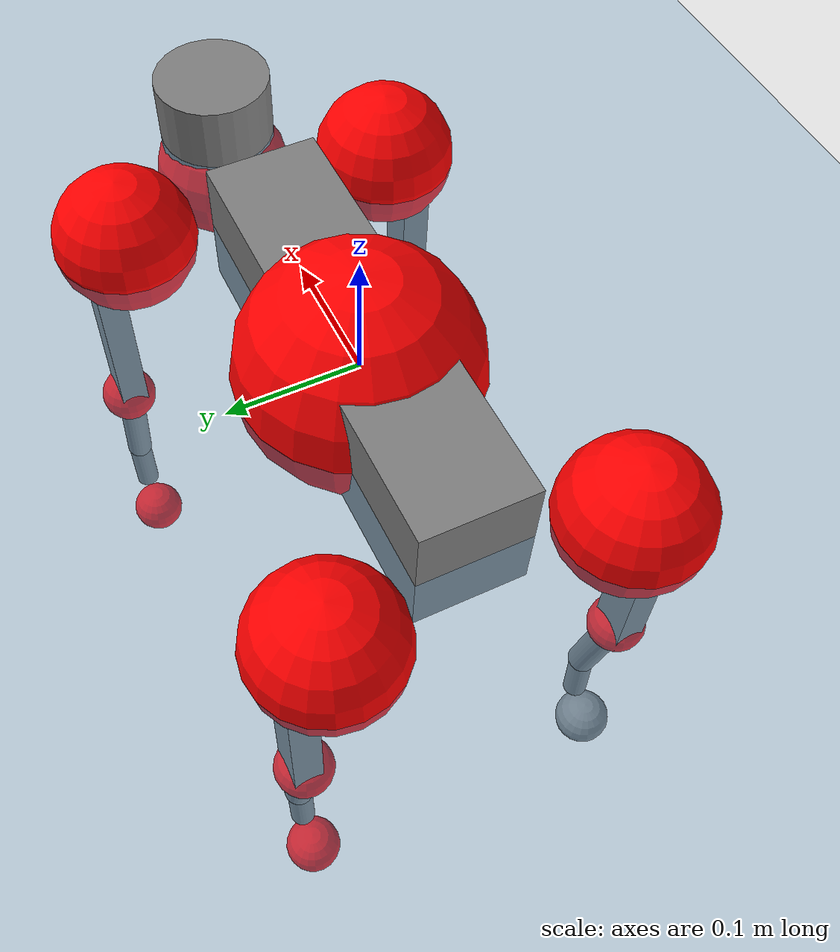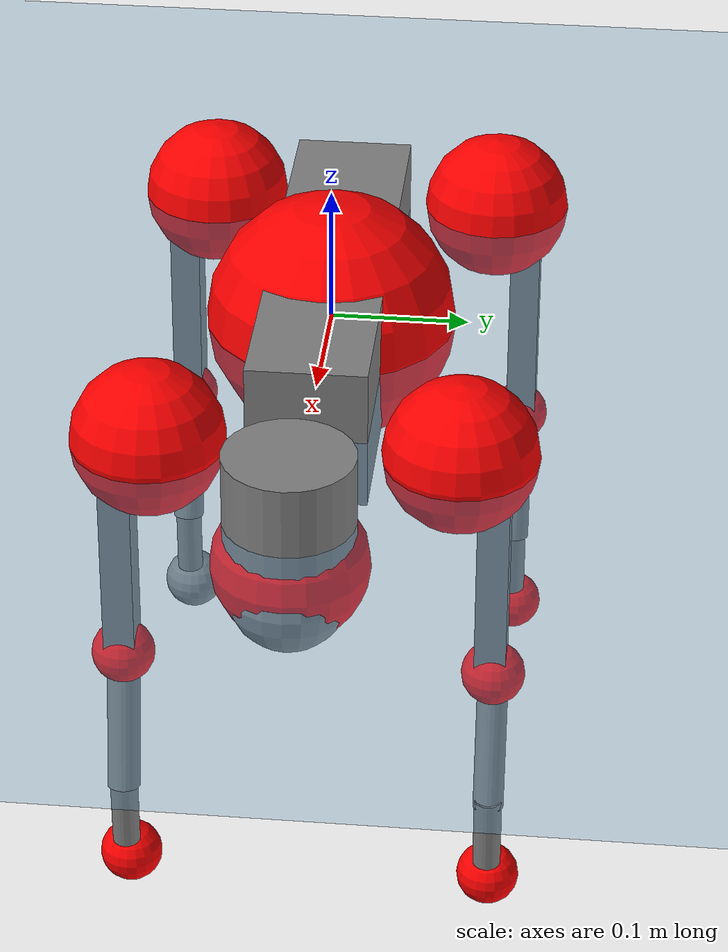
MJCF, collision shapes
<mujoco model="go2">
  <compiler angle="radian" assetdir="assets" balanceinertia="true" inertiafromgeom="false"/>

  <option timestep="0.005" density="1.2" viscosity="2e-05"/>

  <size nkey="1"/>

  <visual>
    <quality shadowsize="8192"/>
    <map shadowclip="0.5"/>
  </visual>

  <default>
    <default class="/">
      <geom contype="0" conaffinity="0" group="1" solref="-1000 -80"/>
      <site size="0.01 0.005 0.005" group="5"/>
      <general forcelimited="true" biastype="affine" gainprm="20" biasprm="0 -20 -0.5"/>
      <default class="go2">
        <joint armature="0.01" damping="0.01" frictionloss="0.2"/>
        <geom condim="1" margin="0.001"/>
        <default class="visual">
          <geom type="mesh" group="2"/>
        </default>
        <default class="collision">
          <geom group="3"/>
          <default class="foot">
            <geom size="0.022 0 0" condim="6" priority="1" friction="0.8 0.02 0.01" solimp="0.015 1 0.022"/>
          </default>
        </default>
        <default class="reward_collision_sphere">
          <geom group="5" rgba="1 0 0 1"/>
        </default>
      </default>
    </default>
  </default>

  <asset>
    <texture type="skybox" colorspace="auto" name="//unnamed_texture_0" builtin="gradient" rgb1="0.95 0.95 0.95" rgb2="0.95 0.95 0.95" width="100" height="600"/>
    <texture type="2d" colorspace="auto" name="texplane" builtin="checker" rgb1="0.345 0.575 0.748" rgb2="0.345 0.575 0.748" markrgb="1 1 1" width="512" height="512"/>
    <material name="MatPlane" class="/" texture="texplane" texuniform="true" texrepeat="2 2" specular="0.9"/>
    <material name="metal" class="/" rgba="0.9 0.95 0.95 1"/>
    <material name="black" class="/" rgba="0 0 0 1"/>
    <material name="white" class="/"/>
    <material name="gray" class="/" rgba="0.671705 0.692426 0.77427 1"/>
    <mesh name="base_0" class="/" file="base_0.obj"/>
    <mesh name="base_1" class="/" file="base_1.obj"/>
    <mesh name="base_2" class="/" file="base_2.obj"/>
    <mesh name="base_3" class="/" file="base_3.obj"/>
    <mesh name="base_4" class="/" file="base_4.obj"/>
    <mesh name="hip_0" class="/" file="hip_0.obj"/>
    <mesh name="hip_1" class="/" file="hip_1.obj"/>
    <mesh name="thigh_0" class="/" file="thigh_0.obj"/>
    <mesh name="thigh_1" class="/" file="thigh_1.obj"/>
    <mesh name="thigh_mirror_0" class="/" file="thigh_mirror_0.obj"/>
    <mesh name="thigh_mirror_1" class="/" file="thigh_mirror_1.obj"/>
    <mesh name="calf_0" class="/" file="calf_0.obj"/>
    <mesh name="calf_1" class="/" file="calf_1.obj"/>
    <mesh name="calf_mirror_0" class="/" file="calf_mirror_0.obj"/>
    <mesh name="calf_mirror_1" class="/" file="calf_mirror_1.obj"/>
    <mesh name="foot" class="/" file="foot.obj"/>
  </asset>

  <worldbody>
    <geom name="floor" class="/" size="100 100 0.125" type="plane" group="0" material="MatPlane"/>
    <light name="toplight_shadow" class="/" pos="0 0 5" dir="0.0990148 0.0990148 -0.990148" type="directional" ambient="0.04 0.04 0.04" diffuse="0.55 0.55 0.55" specular="0.12 0.12 0.12"/>
    <light name="toplight_fill" class="/" pos="0 0 5" dir="0.0990148 0.0990148 -0.990148" type="directional" castshadow="false" ambient="0.04 0.04 0.04" diffuse="0.3 0.3 0.3" specular="0.08 0.08 0.08"/>
    <body name="trunk" childclass="go2" pos="-0.000577416 0.000278572 0.000642705" quat="1 2.51656e-05 1.78178e-05 -7.48328e-06">
      <inertial pos="0.0205251 -0.000483773 -0.0041693" quat="0.0033501 0.711515 -0.00569854 0.70264" mass="5.17314" diaginertia="0.0850058 0.0665118 0.0115549"/>
      <joint name="//unnamed_joint_0" type="free" armature="0" damping="0" frictionloss="0"/>
      <geom name="//unnamed_geom_1" class="visual" material="black" mesh="base_0"/>
      <geom name="//unnamed_geom_2" class="visual" material="black" mesh="base_1"/>
      <geom name="//unnamed_geom_3" class="visual" material="black" mesh="base_2"/>
      <geom name="//unnamed_geom_4" class="visual" material="white" mesh="base_3"/>
      <geom name="//unnamed_geom_5" class="visual" material="gray" mesh="base_4"/>
      <geom name="trunk_1" class="collision" size="0.171332 0.0425825 0.0519188" type="box"/>
      <geom name="trunk_2" class="collision" size="0.0455428 0.0409885" pos="0.270976 0 0.00856806" type="cylinder"/>
      <geom name="trunk_3" class="collision" size="0.0428102" pos="0.278582 0 -0.0514083"/>
      <geom name="//unnamed_geom_9" class="reward_collision_sphere" size="0.0910856"/>
      <geom name="//unnamed_geom_10" class="reward_collision_sphere" size="0.0546514" pos="0.266222 0 -0.0385563"/>
      <site name="imu" pos="-0.026283 -0.0119692 0.0413889" size="0.00910856"/>
      <camera name="track" pos="0 -1.84994 0" quat="0.707107 0.707107 0 0" mode="trackcom"/>
      <camera name="ego_camera" pos="0.296647 0 0.0385563" quat="-0.5 -0.5 0.5 0.5"/>
      <body name="FL_hip" pos="0.183543 0.0431076 0.00209587" quat="0.999999 0.000455705 -0.000796823 0.000803562">
        <inertial pos="-0.0044462 0.00253732 0.000579206" quat="0.499653 0.498417 0.505687 0.496193" mass="0.525557" diaginertia="0.000703764 0.000414561 0.000225533"/>
        <joint name="FL_hip_joint" pos="0 0 0" axis="0.99998 -0.00310924 0.00552009" range="-1.00964 1.04551" armature="0.00951283" damping="0.00546282" frictionloss="0.180455"/>
        <geom name="//unnamed_geom_11" class="visual" material="metal" mesh="hip_0"/>
        <geom name="//unnamed_geom_12" class="visual" material="gray" mesh="hip_1"/>
        <geom name="//unnamed_geom_13" class="collision" size="0.0418994 0.0182171" pos="0 0.0739977 0" quat="0.707107 0.707107 0 0" type="cylinder"/>
        <geom name="//unnamed_geom_14" class="reward_collision_sphere" size="0.0546514" pos="0 0.064748 0"/>
        <body name="FL_thigh" pos="-0.000190505 0.0888483 0.00208048" quat="1 -0.000108297 -8.16763e-05 0.000114822">
          <inertial pos="-0.00343633 -0.0224505 -0.0303221" quat="0.827299 0.0837739 -0.0191364 0.55515" mass="0.873809" diaginertia="0.00463876 0.00398992 0.00040618"/>
          <joint name="FL_thigh_joint" pos="0 0 0" axis="-0.00176619 0.999998 0.00134105" range="-1.56552 3.53826" armature="0.00934664" damping="0" frictionloss="0.181753"/>
          <geom name="//unnamed_geom_15" class="visual" material="metal" mesh="thigh_0"/>
          <geom name="//unnamed_geom_16" class="visual" material="gray" mesh="thigh_1"/>
          <geom name="//unnamed_geom_17" class="collision" size="0.0970062 0.011158 0.0154846" pos="0 0 -0.0912498" quat="0.707107 0 0.707107 0" type="box"/>
          <body name="FL_calf" pos="0.00184943 0.00199182 -0.182048" quat="1 -4.35348e-05 1.33378e-05 2.12535e-05">
            <inertial pos="0.00706428 0.00014899 -0.120271" quat="0.710709 0.00200102 -0.00381184 0.703473" mass="0.186094" diaginertia="0.00115946 0.000993474 2.4483e-05"/>
            <joint name="FL_calf_joint" pos="0 0 0" axis="-0.00119481 0.999998 0.00163096" range="-2.72019 -0.868993" armature="0.00903941" damping="0.00239034" frictionloss="0.178291"/>
            <geom name="//unnamed_geom_18" class="visual" material="gray" mesh="calf_0"/>
            <geom name="//unnamed_geom_19" class="visual" material="black" mesh="calf_1"/>
            <geom name="FL_calf0" class="collision" size="0.0109303 0.0546514" pos="0.00760633 0 -0.0514083" quat="0.994493 0 -0.104807 0" type="cylinder"/>
            <geom name="//unnamed_geom_21" class="collision" size="0.0100194 0.0296028" pos="0.0190158 0 -0.126807" quat="0.999688 0 0.0249974 0" type="cylinder"/>
            <geom name="//unnamed_geom_22" class="visual" pos="0 0 -0.1825" quat="1 0 0 0" material="black" mesh="foot"/>
            <geom name="FL_foot" class="foot" size="0.0168374" pos="-0.00190158 0 -0.1825"/>
            <geom name="//unnamed_geom_24" class="reward_collision_sphere" size="0.0227714"/>
            <geom name="//unnamed_geom_25" class="reward_collision_sphere" size="0.0227714" pos="-0.00190158 0 -0.1825"/>
            <site name="FL_foot" class="foot" pos="-0.00190158 0 -0.1825" size="0.00910856"/>
          </body>
        </body>
      </body>
      <body name="FR_hip" pos="0.184008 -0.0428141 0.00255463" quat="1 -7.87816e-06 -0.000108753 -0.000130245">
        <inertial pos="-0.00420931 -0.00201328 -9.86837e-05" quat="0.495086 0.507621 0.49324 0.50391" mass="0.524482" diaginertia="0.000710008 0.000409205 0.000227185"/>
        <joint name="FR_hip_joint" pos="0 0 0" axis="0.999999 0.000811771 0.000817487" stiffness="0.00397552" range="-1.03356 1.05788" armature="0.00913403" damping="0.0109626" frictionloss="0.173073"/>
        <geom name="//unnamed_geom_26" class="visual" pos="0 5.9383e-10 2.54706e-08" quat="4.63268e-05 1 0 0" material="metal" mesh="hip_0"/>
        <geom name="//unnamed_geom_27" class="visual" pos="0 9.6267e-10 -6.29985e-08" quat="4.63268e-05 1 0 0" material="gray" mesh="hip_1"/>
        <geom name="//unnamed_geom_28" class="collision" size="0.0418994 0.0182171" pos="0 -0.0739977 0" quat="0.707107 0.707107 0 0" type="cylinder"/>
        <geom name="//unnamed_geom_29" class="reward_collision_sphere" size="0.0546514" pos="0 -0.064748 0"/>
        <body name="FR_thigh" pos="-0.000200502 -0.08838 -0.000360975" quat="1 0.000215743 -0.000243748 0.000380189">
          <inertial pos="-0.00357889 0.0208426 -0.0300545" quat="0.544495 -0.0270918 0.0800331 0.834497" mass="0.882592" diaginertia="0.00477556 0.00405654 0.000416051"/>
          <joint name="FR_thigh_joint" pos="0 0 0" axis="-0.00176172 -0.999994 0.00306476" range="-3.53277 1.59158" armature="0.00862475" damping="0.0140528" frictionloss="0.177685"/>
          <geom name="//unnamed_geom_30" class="visual" material="metal" mesh="thigh_mirror_0"/>
          <geom name="//unnamed_geom_31" class="visual" material="gray" mesh="thigh_mirror_1"/>
          <geom name="//unnamed_geom_32" class="collision" size="0.0970062 0.011158 0.0154846" pos="0 0 -0.0912498" quat="0.707107 0 0.707107 0" type="box"/>
          <body name="FR_calf" pos="-0.000263173 0.000631912 -0.181771" quat="1 -7.35779e-06 6.50842e-06 9.03602e-06">
            <inertial pos="0.00565236 0.000278512 -0.118937" quat="0.703637 -0.00680969 0.0016737 0.710525" mass="0.174659" diaginertia="0.00110896 0.000989212 2.32371e-05"/>
            <joint name="FR_calf_joint" pos="0 0 0" axis="0.00733882 -0.999972 -0.00173737" range="0.830159 2.73511" armature="0.00944834" damping="0.0110778" frictionloss="0.182772"/>
            <geom name="//unnamed_geom_33" class="visual" material="gray" mesh="calf_mirror_0"/>
            <geom name="//unnamed_geom_34" class="visual" material="black" mesh="calf_mirror_1"/>
            <geom name="FR_calf0" class="collision" size="0.0118411 0.0546514" pos="0.00950792 0 -0.0514083" quat="0.995004 0 -0.0998334 0" type="cylinder"/>
            <geom name="//unnamed_geom_36" class="collision" size="0.0100194 0.0296028" pos="0.0190158 0 -0.126807" quat="0.999688 0 0.0249974 0" type="cylinder"/>
            <geom name="//unnamed_geom_37" class="visual" pos="0 0 -0.1825" quat="1 0 0 0" material="black" mesh="foot"/>
            <geom name="FR_foot" class="foot" size="0.0220204" pos="-0.00190158 0 -0.1825"/>
            <geom name="//unnamed_geom_39" class="reward_collision_sphere" size="0.0227714"/>
            <geom name="//unnamed_geom_40" class="reward_collision_sphere" size="0.0227714" pos="-0.00190158 0 -0.1825"/>
            <site name="FR_foot" class="foot" pos="-0.00190158 0 -0.1825" size="0.00910856"/>
          </body>
        </body>
      </body>
      <body name="RL_hip" pos="-0.183403 0.0435501 -0.00182575" quat="1 -2.24344e-05 1.57511e-05 4.4361e-06">
        <inertial pos="0.00491224 0.00176322 -0.00203121" quat="0.503961 0.498873 0.49775 0.499394" mass="0.521566" diaginertia="0.000696608 0.000399785 0.000221832"/>
        <joint name="RL_hip_joint" pos="0 0 0" axis="-0.999838 -0.0148162 0.0102354" range="-1.00124 1.08255" armature="0.00908257" damping="0.000682322" frictionloss="0.198914"/>
        <geom name="//unnamed_geom_41" class="visual" pos="-8.18768e-10 0 -1.60497e-07" quat="4.63268e-05 0 1 0" material="metal" mesh="hip_0"/>
        <geom name="//unnamed_geom_42" class="visual" pos="-1.32732e-09 0 -1.42338e-07" quat="4.63268e-05 0 1 0" material="gray" mesh="hip_1"/>
        <geom name="//unnamed_geom_43" class="collision" size="0.0418994 0.0182171" pos="0 0.0739977 0" quat="0.707107 0.707107 0 0" type="cylinder"/>
        <geom name="//unnamed_geom_44" class="reward_collision_sphere" size="0.0546514" pos="0 0.064748 0"/>
        <body name="RL_thigh" pos="0.000441159 0.0886162 -0.00158116" quat="1 1.20612e-05 3.93192e-05 2.27333e-05">
          <inertial pos="-0.00518468 -0.0198958 -0.0304744" quat="0.824666 0.0839555 -0.019024 0.55903" mass="0.86107" diaginertia="0.00444867 0.003901 0.000391348"/>
          <joint name="RL_thigh_joint" pos="0 0 0" axis="0.00174574 0.999957 0.00905591" stiffness="0.00344651" range="-0.559795 4.54905" armature="0.00866487" damping="0.00790137" frictionloss="0.185193"/>
          <geom name="//unnamed_geom_45" class="visual" material="metal" mesh="thigh_0"/>
          <geom name="//unnamed_geom_46" class="visual" material="gray" mesh="thigh_1"/>
          <geom name="//unnamed_geom_47" class="collision" size="0.0970062 0.011158 0.0154846" pos="0 0 -0.0912498" quat="0.707107 0 0.707107 0" type="box"/>
          <body name="RL_calf" pos="0.000300924 -0.00219774 -0.183737" quat="1 9.96723e-06 -3.19484e-05 -1.16805e-05">
            <inertial pos="0.00555847 -0.000300539 -0.120879" quat="0.712017 0.00540594 -0.000529241 0.702141" mass="0.180839" diaginertia="0.00115644 0.000980148 2.48883e-05"/>
            <joint name="RL_calf_joint" pos="0 0 0" axis="0.00514411 0.999946 -0.0089967" range="-2.74158 -0.83634" armature="0.00939707" damping="0.000209906" frictionloss="0.18027"/>
            <geom name="//unnamed_geom_48" class="visual" material="gray" mesh="calf_0"/>
            <geom name="//unnamed_geom_49" class="visual" material="black" mesh="calf_1"/>
            <geom name="RL_calf0" class="collision" size="0.0118411 0.0546514" pos="0.00950792 0 -0.0514083" quat="0.995004 0 -0.0998334 0" type="cylinder"/>
            <geom name="//unnamed_geom_51" class="collision" size="0.0100194 0.0296028" pos="0.0190158 0 -0.126807" quat="0.999688 0 0.0249974 0" type="cylinder"/>
            <geom name="//unnamed_geom_52" class="visual" pos="0 0 -0.1825" quat="1 0 0 0" material="black" mesh="foot"/>
            <geom name="RL_foot" class="foot" size="0.0180831" pos="-0.00190158 0 -0.1825"/>
            <geom name="//unnamed_geom_54" class="reward_collision_sphere" size="0.0227714"/>
            <geom name="//unnamed_geom_55" class="reward_collision_sphere" size="0.0227714" pos="-0.00190158 0 -0.1825"/>
            <site name="RL_foot" class="foot" pos="-0.00190158 0 -0.1825" size="0.00910856"/>
          </body>
        </body>
      </body>
      <body name="RR_hip" pos="-0.184025 -0.0432457 -0.00117084" quat="1 -0.000381368 -0.000129882 -5.93924e-05">
        <inertial pos="0.00488752 -6.12531e-05 -0.000691142" quat="0.499058 0.496959 0.49831 0.505628" mass="0.492062" diaginertia="0.000666996 0.000392961 0.000215056"/>
        <joint name="RR_hip_joint" pos="0 0 0" axis="-0.999997 -0.00114653 0.00212829" range="-1.06639 1.02377" armature="0.00931709" damping="0" frictionloss="0.172826"/>
        <geom name="//unnamed_geom_56" class="visual" pos="8.17874e-10 5.9383e-10 -1.85968e-07" quat="2.14617e-09 4.63268e-05 4.63268e-05 -1" material="metal" mesh="hip_0"/>
        <geom name="//unnamed_geom_57" class="visual" pos="1.32953e-09 9.6267e-10 -7.93398e-08" quat="2.14617e-09 4.63268e-05 4.63268e-05 -1" material="gray" mesh="hip_1"/>
        <geom name="//unnamed_geom_58" class="collision" size="0.0418994 0.0182171" pos="0 -0.0739977 0" quat="0.707107 0.707107 0 0" type="cylinder"/>
        <geom name="//unnamed_geom_59" class="reward_collision_sphere" size="0.0546514" pos="0 -0.064748 0"/>
        <body name="RR_thigh" pos="-0.000144109 -0.0895047 0.00100554" quat="1 0.000272089 -0.000190415 -2.65972e-05">
          <inertial pos="-0.00339889 0.0214155 -0.0280627" quat="0.551595 -0.0201366 0.0851659 0.829508" mass="0.842648" diaginertia="0.00449906 0.00386383 0.000405261"/>
          <joint name="RR_thigh_joint" pos="0 0 0" axis="0.0101649 -0.999947 0.00183876" stiffness="0.000490658" range="-4.57917 0.560366" armature="0.0090789" damping="0.0105535" frictionloss="0.169788"/>
          <geom name="//unnamed_geom_60" class="visual" material="metal" mesh="thigh_mirror_0"/>
          <geom name="//unnamed_geom_61" class="visual" material="gray" mesh="thigh_mirror_1"/>
          <geom name="//unnamed_geom_62" class="collision" size="0.0970062 0.011158 0.0154846" pos="0 0 -0.0912498" quat="0.707107 0 0.707107 0" type="box"/>
          <body name="RR_calf" pos="0.00291086 -0.00108482 -0.183227" quat="1 7.78384e-05 2.58619e-05 -1.0056e-05">
            <inertial pos="0.00475723 0.0005937 -0.121462" quat="0.703009 -0.00476874 0.00213637 0.711162" mass="0.179826" diaginertia="0.00115917 0.00098074 2.45784e-05"/>
            <joint name="RR_calf_joint" pos="0 0 0" axis="0.00326582 -0.999985 -0.0043469" range="0.839966 2.72046" armature="0.009452" damping="0.00298632" frictionloss="0.184919"/>
            <geom name="//unnamed_geom_63" class="visual" material="gray" mesh="calf_mirror_0"/>
            <geom name="//unnamed_geom_64" class="visual" material="black" mesh="calf_mirror_1"/>
            <geom name="RR_calf0" class="collision" size="0.0118411 0.0546514" pos="0.00950792 0 -0.0514083" quat="0.995004 0 -0.0998334 0" type="cylinder"/>
            <geom name="//unnamed_geom_66" class="collision" size="0.0100194 0.0296028" pos="0.0190158 0 -0.126807" quat="0.999688 0 0.0249974 0" type="cylinder"/>
            <geom name="//unnamed_geom_67" class="visual" pos="0 0 -0.1825" quat="1 0 0 0" material="black" mesh="foot"/>
            <geom name="RR_foot" class="foot" size="0.0232526" pos="-0.00190158 0 -0.1825"/>
            <geom name="//unnamed_geom_69" class="reward_collision_sphere" size="0.0227714"/>
            <geom name="//unnamed_geom_70" class="reward_collision_sphere" size="0.0227714" pos="-0.00190158 0 -0.1825"/>
            <site name="RR_foot" class="foot" pos="-0.00190158 0 -0.1825" size="0.00910856"/>
          </body>
        </body>
      </body>
    </body>
  </worldbody>

  <contact>
    <pair class="/" geom1="floor" geom2="FL_foot" name="//unnamed_contact_0"/>
    <pair class="/" geom1="floor" geom2="FR_foot" name="//unnamed_contact_1"/>
    <pair class="/" geom1="floor" geom2="RL_foot" name="//unnamed_contact_2"/>
    <pair class="/" geom1="floor" geom2="RR_foot" name="//unnamed_contact_3"/>
  </contact>

  <actuator>
    <general name="FL_hip" class="/" joint="FL_hip_joint" forcerange="-21.717 21.717" gainprm="18.7156" biasprm="0 -18.7156 -0.473287"/>
    <general name="FL_thigh" class="/" joint="FL_thigh_joint" forcerange="-22.8809 22.8809" gainprm="18.7156" biasprm="0 -18.7156 -0.473287"/>
    <general name="FL_calf" class="/" joint="FL_calf_joint" forcerange="-38.3468 38.3468" gainprm="18.7156" biasprm="0 -18.7156 -0.473287"/>
    <general name="FR_hip" class="/" joint="FR_hip_joint" forcerange="-21.9752 21.9752" gainprm="18.7156" biasprm="0 -18.7156 -0.473287"/>
    <general name="FR_thigh" class="/" joint="FR_thigh_joint" forcerange="-21.3763 21.3763" gainprm="18.7156" biasprm="0 -18.7156 -0.473287"/>
    <general name="FR_calf" class="/" joint="FR_calf_joint" forcerange="-44.7861 44.7861" gainprm="18.7156" biasprm="0 -18.7156 -0.473287"/>
    <general name="RL_hip" class="/" joint="RL_hip_joint" forcerange="-23.1812 23.1812" gainprm="18.7156" biasprm="0 -18.7156 -0.473287"/>
    <general name="RL_thigh" class="/" joint="RL_thigh_joint" forcerange="-21.0818 21.0818" gainprm="18.7156" biasprm="0 -18.7156 -0.473287"/>
    <general name="RL_calf" class="/" joint="RL_calf_joint" forcerange="-41.8033 41.8033" gainprm="18.7156" biasprm="0 -18.7156 -0.473287"/>
    <general name="RR_hip" class="/" joint="RR_hip_joint" forcerange="-21.4738 21.4738" gainprm="18.7156" biasprm="0 -18.7156 -0.473287"/>
    <general name="RR_thigh" class="/" joint="RR_thigh_joint" forcerange="-19.6925 19.6925" gainprm="18.7156" biasprm="0 -18.7156 -0.473287"/>
    <general name="RR_calf" class="/" joint="RR_calf_joint" forcerange="-39.636 39.636" gainprm="18.7156" biasprm="0 -18.7156 -0.473287"/>
  </actuator>

  <sensor>
    <gyro site="imu" name="imu_angular_velocity"/>
    <velocimeter site="imu" name="imu_linear_velocity"/>
    <framelinvel objtype="site" objname="FL_foot" name="FL_foot_global_linear_velocity"/>
    <framelinvel objtype="site" objname="FR_foot" name="FR_foot_global_linear_velocity"/>
    <framelinvel objtype="site" objname="RL_foot" name="RL_foot_global_linear_velocity"/>
    <framelinvel objtype="site" objname="RR_foot" name="RR_foot_global_linear_velocity"/>
  </sensor>

  <keyframe>
    <key name="home" qpos="0 0 0.325 1 0 0 0 0.1 0.8 -1.5 -0.1 -0.8 1.5 -0.1 0.8 -1.5 0.1 -0.8 1.5"/>
  </keyframe>
</mujoco>
